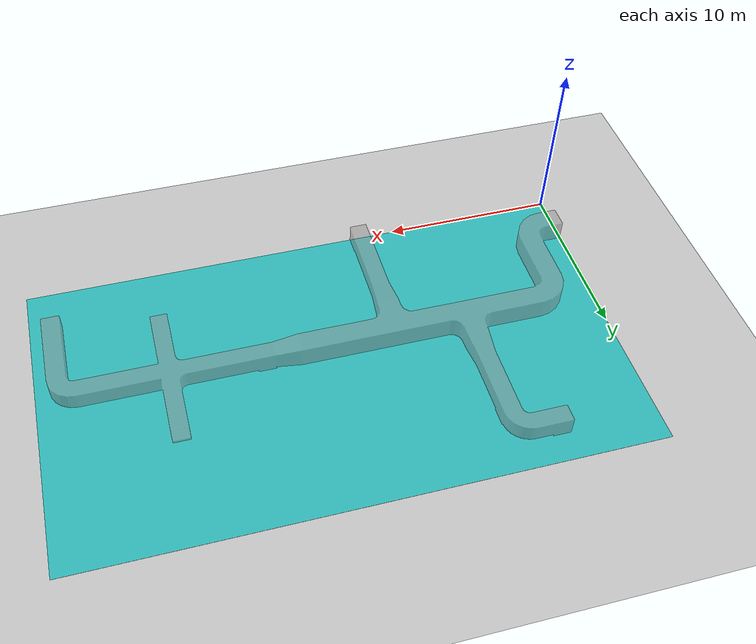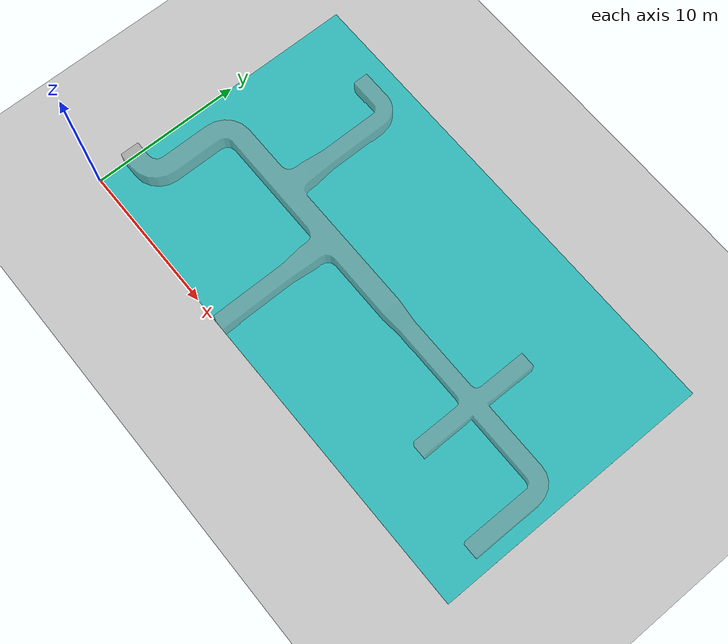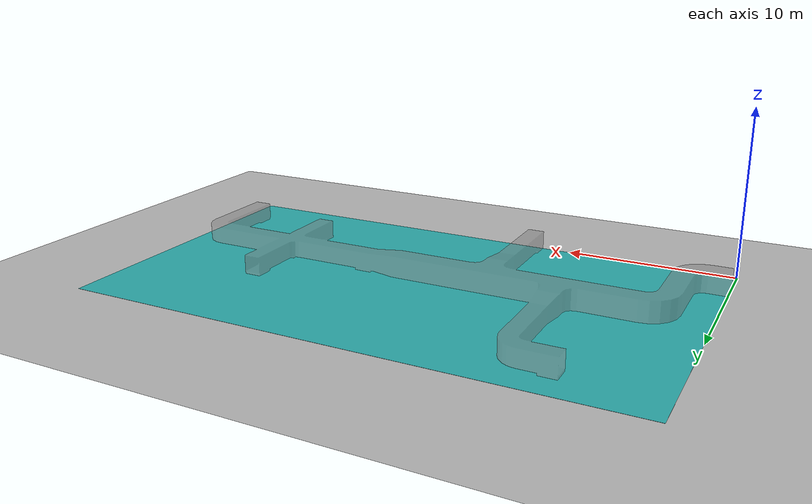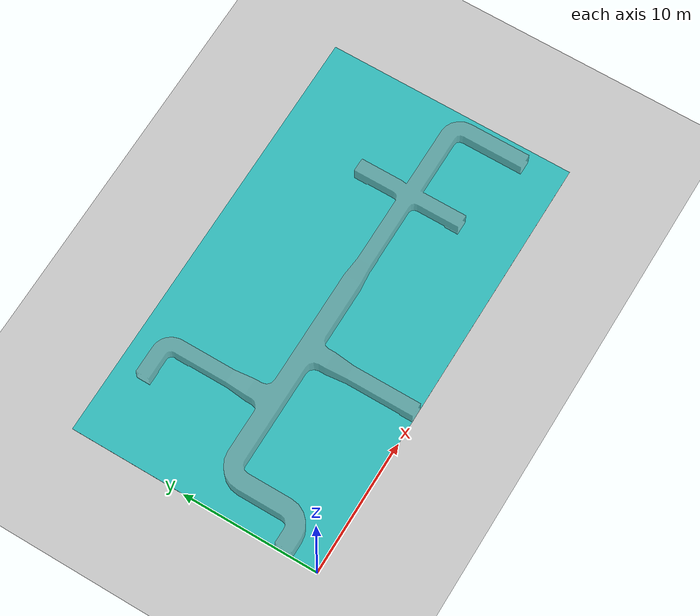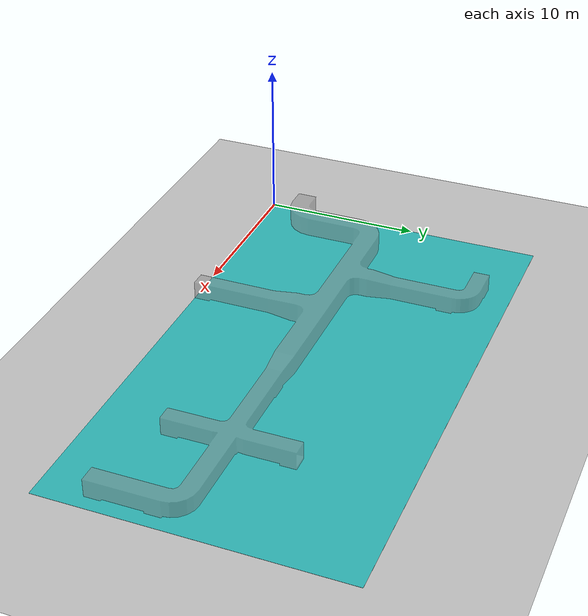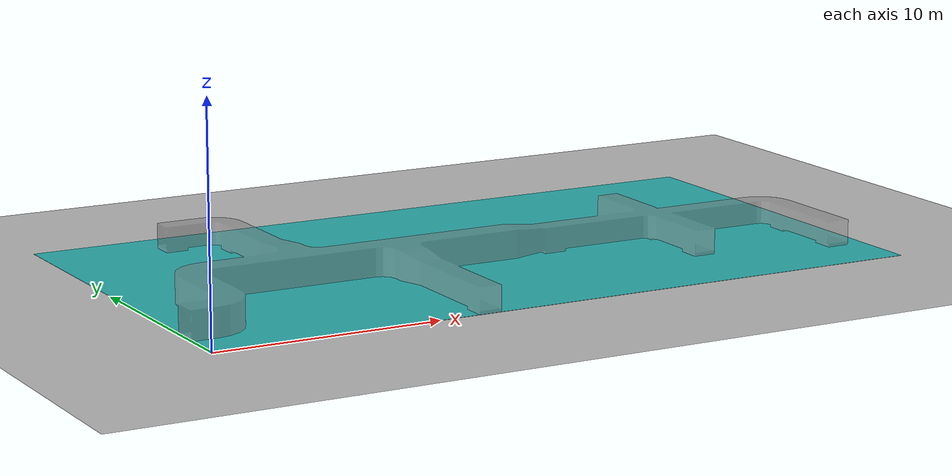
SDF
<sdf version="1.7">
 <world name="default">
  <light name="sun" type="directional">
   <pose>0 0 10 0 -0 0</pose>
   <diffuse>0.8 0.8 0.8 1</diffuse>
   <specular>0.2 0.2 0.2 1</specular>
   <attenuation>
    <range>1000</range>
    <constant>0.9</constant>
    <linear>0.01</linear>
    <quadratic>0.001</quadratic>
   </attenuation>
   <direction>-0.5 0.1 -0.9</direction>
   <spot><inner_angle>0</inner_angle><outer_angle>0</outer_angle><falloff>0</falloff></spot>
  </light>
  <model name="ground_plane">
   <static>1</static>
   <link name="link">
    <collision name="collision">
     <geometry><plane><normal>0 0 1</normal><size>100 100</size></plane></geometry>
     <surface>
      <contact><collide_bitmask>65535</collide_bitmask></contact>
      <friction><ode><mu>100</mu><mu2>50</mu2></ode></friction>
     </surface>
    </collision>
    <visual name="visual">
     <cast_shadows>0</cast_shadows>
     <geometry><plane><normal>0 0 1</normal><size>100 100</size></plane></geometry>
     <material>
      <script><uri>file://media/materials/scripts/gazebo.material</uri><name>Gazebo/Grey</name></script>
     </material>
    </visual>
   </link>
  </model>
  <gravity>0 0 -9.8</gravity>
  <magnetic_field>6e-06 2.3e-05 -4.2e-05</magnetic_field>
  <atmosphere type="adiabatic"/>
  <physics type="ode">
   <max_step_size>0.001</max_step_size>
   <real_time_factor>1</real_time_factor>
   <real_time_update_rate>1000</real_time_update_rate>
  </physics>
  <scene><ambient>0.4 0.4 0.4 1</ambient><background>0.7 0.7 0.7 1</background><shadows>1</shadows></scene>
  <spherical_coordinates>
   <surface_model>EARTH_WGS84</surface_model>
   <latitude_deg>0</latitude_deg>
   <longitude_deg>0</longitude_deg>
   <elevation>0</elevation>
   <heading_deg>0</heading_deg>
  </spherical_coordinates>
  <model name="varPipe">
   <link name="base_link">
    <inertial>
     <pose>16.3474 8.72667 0.190901 0 -0 0</pose>
     <mass>9991.9</mass>
     <inertia>
      <ixx>186943</ixx>
      <ixy>-4643.55</ixy>
      <ixz>-12.3492</ixz>
      <iyy>583234</iyy>
      <iyz>1450.47</iyz>
      <izz>767936</izz>
     </inertia>
    </inertial>
    <collision name="base_link_collision">
     <geometry>
      <mesh>
       <scale>1 1 1</scale>
       <uri>/home/tymiao/mty/autolabor_pro1_pip_teleop/src/varPipe/meshes/base_link.STL</uri>
      </mesh>
     </geometry>
     <surface><friction><ode><mu>0.5</mu><mu2>0.5</mu2></ode></friction></surface>
    </collision>
    <collision name="base_link_fixed_joint_lump__pipe_Link_collision_1">
     <pose>0 1.8574 0.01 0 -0 0</pose>
     <geometry>
      <mesh>
       <scale>1 1 1</scale>
       <uri>/home/tymiao/mty/autolabor_pro1_pip_teleop/src/varPipe/meshes/pipe_Link.STL</uri>
      </mesh>
     </geometry>
     <surface><friction><ode><mu>0.6</mu><mu2>0.6</mu2></ode></friction></surface>
    </collision>
    <visual name="base_link_visual">
     <geometry>
      <mesh>
       <scale>1 1 1</scale>
       <uri>/home/tymiao/mty/autolabor_pro1_pip_teleop/src/varPipe/meshes/base_link.STL</uri>
      </mesh>
     </geometry>
     <material>
      <script><name>Gazebo/Turquoise</name><uri>file://media/materials/scripts/gazebo.material</uri></script>
     </material>
    </visual>
    <visual name="base_link_fixed_joint_lump__pipe_Link_visual_1">
     <pose>0 1.8574 0.01 0 -0 0</pose>
     <geometry>
      <mesh>
       <scale>1 1 1</scale>
       <uri>/home/tymiao/mty/autolabor_pro1_pip_teleop/src/varPipe/meshes/pipe_Link.STL</uri>
      </mesh>
     </geometry>
     <material>
      <script><name>Gazebo/GreyTransparent</name><uri>file://media/materials/scripts/gazebo.material</uri></script>
     </material>
    </visual>
   </link>
   <pose>0 -0 -7.9e-05 0 -2e-06 0</pose>
  </model>
 </world>
</sdf>
